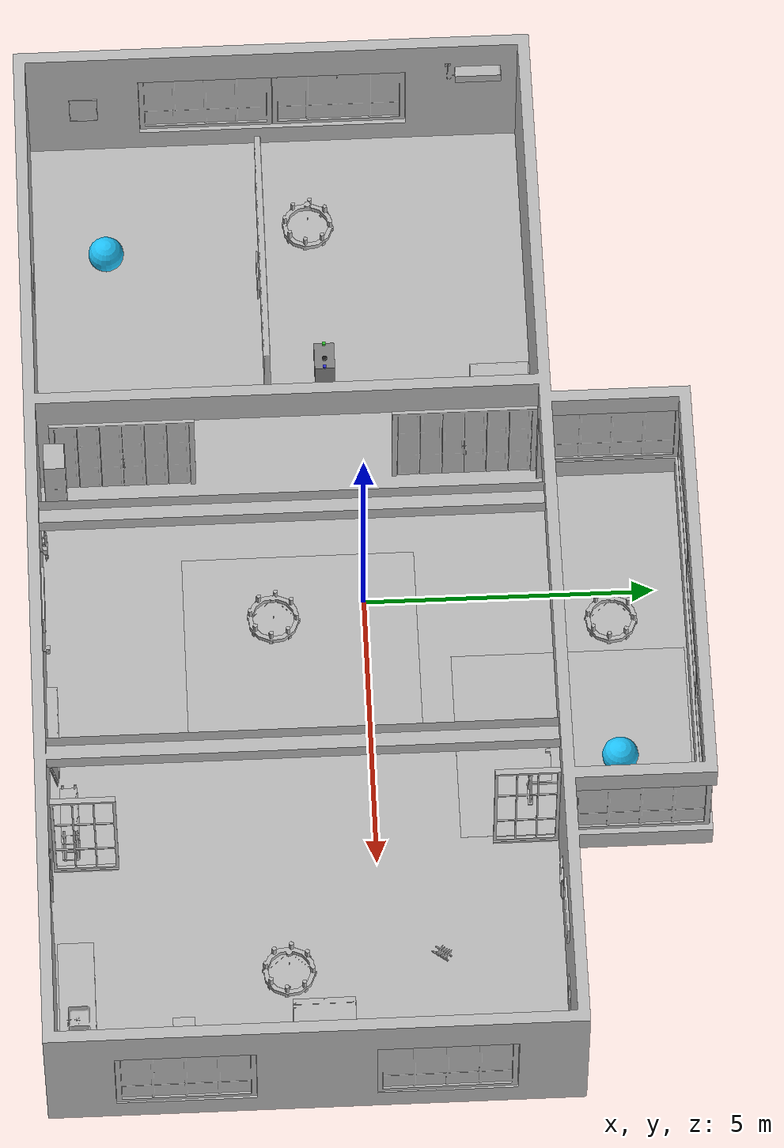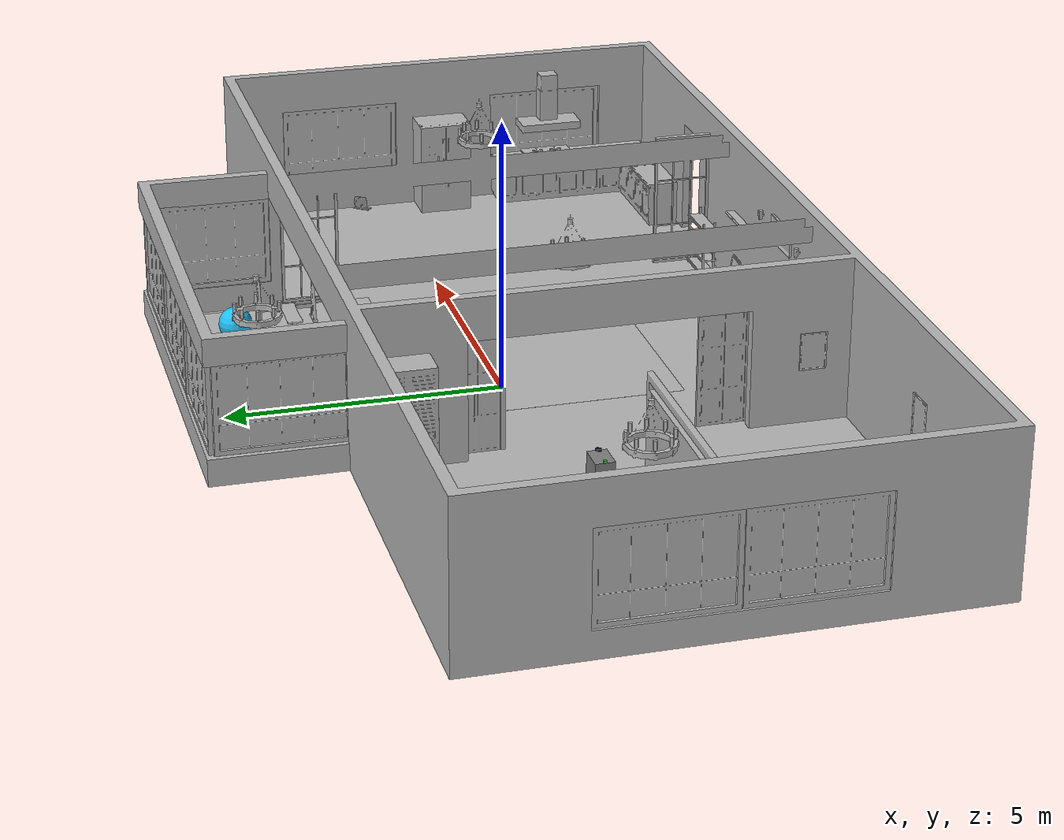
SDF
<sdf version="1.6">
 <world name="small_house">
  <plugin filename="libignition-gazebo-physics-system.so" name="ignition::gazebo::systems::Physics"/>
  <plugin filename="libignition-gazebo-user-commands-system.so" name="ignition::gazebo::systems::UserCommands"/>
  <plugin filename="libignition-gazebo-scene-broadcaster-system.so" name="ignition::gazebo::systems::SceneBroadcaster"/>
  <plugin filename="libignition-gazebo-sensors-system.so" name="ignition::gazebo::systems::Sensors">
   <render_engine>ogre2</render_engine>
  </plugin>
  <plugin filename="libignition-gazebo-imu-system.so" name="ignition::gazebo::systems::Imu"/>
  <gravity>0 0 -9.8</gravity>
  <magnetic_field>6e-06 2.3e-05 -4.2e-05</magnetic_field>
  <atmosphere type="adiabatic"/>
  <physics name="default_physics" default="0" type="ode">
   <max_step_size>0.001</max_step_size>
   <real_time_factor>1</real_time_factor>
   <real_time_update_rate>1000</real_time_update_rate>
  </physics>
  <scene>
   <ambient>0.4 0.4 0.4 1</ambient>
   <background>0.7 0.7 0.7 1</background>
   <shadows>false</shadows>
   <grid>false</grid>
   <origin_visual>false</origin_visual>
  </scene>
  <spherical_coordinates>
   <surface_model>EARTH_WGS84</surface_model>
   <latitude_deg>0</latitude_deg>
   <longitude_deg>0</longitude_deg>
   <elevation>0</elevation>
   <heading_deg>0</heading_deg>
  </spherical_coordinates>
  <model name="AirconditionerA_01_001">
   <static>true</static>
   <include><uri>model://aws_robomaker_residential_AirconditionerA_01</uri></include>
   <pose>-9.199410 2.411230 2.084544 0 -0 0</pose>
  </model>
  <model name="AirconditionerB_01_001">
   <static>true</static>
   <include><uri>model://aws_robomaker_residential_AirconditionerB_01</uri></include>
   <pose>-2.004656 -5.226610 0.003485 0 -0 0</pose>
  </model>
  <model name="Ball_01_001">
   <static>true</static>
   <include><uri>model://aws_robomaker_residential_Ball_01</uri></include>
   <pose>3.295503 4.225674 0.318684 0 -0 0</pose>
  </model>
  <model name="Ball_01_003">
   <static>true</static>
   <include><uri>model://aws_robomaker_residential_Ball_01</uri></include>
   <pose>-6.945503 -4.22174 0.318684 0 -0 0</pose>
  </model>
  <model name="Board_01_001">
   <static>true</static>
   <include><uri>model://aws_robomaker_residential_Board_01</uri></include>
   <pose>2.779073 -5.392703 1.538173 0 -0 0</pose>
  </model>
  <model name="Chandelier_01_001">
   <static>true</static>
   <include><uri>model://aws_robomaker_residential_Chandelier_01</uri></include>
   <pose>1.221061 4.155740 1.295000 0 -0 0</pose>
  </model>
  <model name="Chandelier_01_002">
   <static>true</static>
   <include><uri>model://aws_robomaker_residential_Chandelier_01</uri></include>
   <pose>-6.451061 -0.692040 1.810000 0 -0 0</pose>
  </model>
  <model name="Chandelier_01_003">
   <static>true</static>
   <include><uri>model://aws_robomaker_residential_Chandelier_01</uri></include>
   <pose>7.824061 -1.59 1.7510000 0 -0 0</pose>
  </model>
  <model name="Chandelier_01_004">
   <static>true</static>
   <include><uri>model://aws_robomaker_residential_Chandelier_01</uri></include>
   <pose>1.221061 -1.592040 1.7873000 0 -0 0</pose>
  </model>
  <model name="Carpet_01_001">
   <static>true</static>
   <include><uri>model://aws_robomaker_residential_Carpet_01</uri></include>
   <pose>0.785050 -1.106647 0.001106 0 -0 0</pose>
  </model>
  <model name="Carpet_01_002">
   <static>true</static>
   <include><uri>model://aws_robomaker_residential_Carpet_01</uri></include>
   <pose>2.854050 3.45 0.000585 0 -0 0</pose>
  </model>
  <model name="CookingBench_01_001">
   <include><uri>model://aws_robomaker_residential_CookingBench_01</uri></include>
   <pose>9.038383 -3.351140 0.903610 0 -0 3.137133</pose>
   <static>true</static>
  </model>
  <model name="FitnessEquipment_01_001">
   <static>true</static>
   <include><uri>model://aws_robomaker_residential_FitnessEquipment_01</uri></include>
   <pose>3.484720 3.169104 0.003168 0 -0 0</pose>
  </model>
  <model name="FoldingDoor_01_001">
   <static>true</static>
   <include><uri>model://aws_robomaker_residential_FoldingDoor_01</uri></include>
   <pose>-2.461096 1.844219 0.041881 0 -0 0</pose>
  </model>
  <model name="FoldingDoor_01_002">
   <static>true</static>
   <include><uri>model://aws_robomaker_residential_FoldingDoor_01</uri></include>
   <pose>-2.461096 -4.053320 0.041881 0 -0 0</pose>
  </model>
  <model name="HouseWallB_01_001">
   <static>true</static>
   <include><uri>model://aws_robomaker_residential_HouseWallB_01</uri></include>
  </model>
  <model name="FloorB_01_001">
   <static>true</static>
   <include><uri>model://aws_robomaker_residential_FloorB_01</uri></include>
  </model>
  <model name="FoldingDoor_02_001">
   <static>true</static>
   <include><uri>model://aws_robomaker_residential_FoldingDoor_02</uri></include>
   <pose>4.674231 2.46451 0 0 -0 3.14159</pose>
  </model>
  <model name="FoldingDoor_02_002">
   <static>true</static>
   <include><uri>model://aws_robomaker_residential_FoldingDoor_02</uri></include>
   <pose>4.8912 -4.84968 0 0 -0 0</pose>
  </model>
  <model name="KitchenCabinet_01_001">
   <static>true</static>
   <include><uri>model://aws_robomaker_residential_KitchenCabinet_01</uri></include>
   <pose>8.002009 -3.836509 0.012068 0 -0 -3.140001</pose>
  </model>
  <model name="LightC_01_001">
   <static>true</static>
   <include><uri>model://aws_robomaker_residential_LightC_01</uri></include>
   <pose>1.769567 -5.4443710 2.000000 0 -0 0</pose>
  </model>
  <model name="LightC_01_002">
   <static>true</static>
   <include><uri>model://aws_robomaker_residential_LightC_01</uri></include>
   <pose>-0.138245 -5.4443710 2.000000 0 -0 0</pose>
  </model>
  <model name="PortraitA_01">
   <static>true</static>
   <include><uri>model://aws_robomaker_residential_PortraitA_01</uri></include>
   <pose>-2.712360 -4.817539 1.00000 0 -0 1.566796</pose>
  </model>
  <model name="PortraitB_01">
   <static>true</static>
   <include><uri>model://aws_robomaker_residential_PortraitB_01</uri></include>
   <pose>-1.279683 -5.429630 0.0 -0.076901 0 -3.116718</pose>
  </model>
  <model name="PortraitB_02">
   <static>true</static>
   <include><uri>model://aws_robomaker_residential_PortraitB_02</uri></include>
   <pose>5.737017 3.080310 0.300000 0 -0 0</pose>
  </model>
  <model name="PortraitB_03">
   <static>true</static>
   <include><uri>model://aws_robomaker_residential_PortraitB_03</uri></include>
   <pose>3.071380 -5.349366 0.005494 -0.168428 0.0 3.104232</pose>
  </model>
  <model name="PortraitA_02">
   <static>true</static>
   <include><uri>model://aws_robomaker_residential_PortraitA_02</uri></include>
   <pose>7.937017 3.080310 0.300000 0 -0 3.14</pose>
  </model>
  <model name="PortraitC_01">
   <static>true</static>
   <include><uri>model://aws_robomaker_residential_PortraitC_01</uri></include>
   <pose>-9.294904 -4.526084 1.000000 0 -0 1.554734</pose>
  </model>
  <model name="PortraitD_01">
   <static>true</static>
   <include><uri>model://aws_robomaker_residential_PortraitD_01</uri></include>
   <pose>0.789763 -5.478725 1.800000 0 -0 3.138531</pose>
  </model>
  <model name="PortraitD_02">
   <static>true</static>
   <include><uri>model://aws_robomaker_residential_PortraitD_02</uri></include>
   <pose>6.870181 3.080310 1.488439 0 -0 0</pose>
  </model>
  <model name="PortraitE_01">
   <static>true</static>
   <include><uri>model://aws_robomaker_residential_PortraitE_01</uri></include>
   <pose>-5.773094 -5.492466 1.000000 0 -0 3.132627</pose>
  </model>
  <model name="PortraitE_02">
   <static>true</static>
   <include><uri>model://aws_robomaker_residential_PortraitE_02</uri></include>
   <pose>-6.193025 -1.590208 0.3 0 -0 0.004290</pose>
  </model>
  <model name="Rangehood_01_001">
   <static>true</static>
   <include><uri>model://aws_robomaker_residential_Rangehood_01</uri></include>
   <pose>9.019794 -3.369940 1.507605 0 -0 0</pose>
  </model>
  <model name="Refrigerator_01_001">
   <static>true</static>
   <include><uri>model://aws_robomaker_residential_Refrigerator_01</uri></include>
   <pose>8.702731 -1.032031 0 0 -0 -1.563499</pose>
  </model>
  <model name="ShoeRack_01_001">
   <static>true</static>
   <include><uri>model://aws_robomaker_residential_ShoeRack_01</uri></include>
   <pose>4.297978 -5.173566 0 0 -0 0</pose>
  </model>
  <model name="Tableware_01_001">
   <static>true</static>
   <include><uri>model://aws_robomaker_residential_Tableware_01</uri></include>
   <pose>7.15317 0.982767 0.817812 -0.001238 -0.000976 1.02476</pose>
  </model>
  <model name="RoomWall_01_001">
   <static>true</static>
   <include><uri>model://aws_robomaker_residential_RoomWall_01</uri></include>
   <pose>-6.097550 -1.496180 0.028124 0 -0 0</pose>
  </model>
  <model name="Wardrobe_01_001">
   <static>true</static>
   <include><uri>model://aws_robomaker_residential_Wardrobe_01</uri></include>
   <pose>-3.146710 2.476204 0.000704 0 -0 -1.569673</pose>
  </model>
  <model name="RoomWindow_01_001">
   <static>true</static>
   <include><uri>model://aws_robomaker_residential_RoomWindow_01</uri></include>
   <pose>-9.418600 -0.026285 0.502739 0 -0 0</pose>
  </model>
  <model name="RoomWindow_01_002">
   <static>true</static>
   <include><uri>model://aws_robomaker_residential_RoomWindow_01</uri></include>
   <pose>-9.418600 -2.374090 0.502739 0 -0 0</pose>
  </model>
  <model name="RoomWindow_01_003">
   <static>true</static>
   <include><uri>model://aws_robomaker_residential_RoomWindow_01</uri></include>
   <pose>9.422616 -3.373981 0.502739 0 -0 -3.136099</pose>
  </model>
  <model name="RoomWindow_01_004">
   <static>true</static>
   <include><uri>model://aws_robomaker_residential_RoomWindow_01</uri></include>
   <pose>9.422558 0.968520 0.496581 0 -0 -3.136099</pose>
  </model>
  <model name="RoomWindow_01_005">
   <static>true</static>
   <include><uri>model://aws_robomaker_residential_RoomWindow_01</uri></include>
   <pose>4.722317 4.470281 0.502739 0 -0 -3.136099</pose>
  </model>
  <model name="RoomWindow_01_006">
   <static>true</static>
   <include><uri>model://aws_robomaker_residential_RoomWindow_01</uri></include>
   <pose>3.488520 5.600688 0.502739 0 -0 -1.566274</pose>
  </model>
  <model name="RoomWindow_01_007">
   <static>true</static>
   <include><uri>model://aws_robomaker_residential_RoomWindow_01</uri></include>
   <pose>1.140949 5.600688 0.502739 0 -0 -1.566274</pose>
  </model>
  <model name="RoomWindow_01_008">
   <static>true</static>
   <include><uri>model://aws_robomaker_residential_RoomWindow_01</uri></include>
   <pose>-1.199340 5.600688 0.502739 0 -0 -1.566274</pose>
  </model>
  <model name="RoomWindow_01_009">
   <static>true</static>
   <include><uri>model://aws_robomaker_residential_RoomWindow_01</uri></include>
   <pose>-2.396624 4.387607 0.502739 0 -0 0</pose>
  </model>
  <light name="LivingRoom_CeilingLight_0" type="point">
   <pose>1.194296 4.155759 2.2 0 -0 0</pose>
   <diffuse>0.5 0.5 0.5 1</diffuse>
   <specular>0.1 0.1 0.1 1</specular>
   <attenuation>
    <range>20</range>
    <constant>0.32</constant>
    <linear>0.01</linear>
    <quadratic>0.03</quadratic>
   </attenuation>
   <cast_shadows>0</cast_shadows>
   <direction>0 0 -1</direction>
  </light>
  <light name="LivingRoom_CeilingLight_1" type="point">
   <pose>1.194296 -1.589959 2.2 0 -0 0</pose>
   <diffuse>0.5 0.5 0.5 1</diffuse>
   <specular>0.1 0.1 0.1 1</specular>
   <attenuation>
    <range>20</range>
    <constant>0.05</constant>
    <linear>0.01</linear>
    <quadratic>0.09</quadratic>
   </attenuation>
   <cast_shadows>0</cast_shadows>
   <direction>0 0 -1</direction>
  </light>
  <light name="LivingRoom_WallLight_0" type="point">
   <pose>1.76956 -5.444370 2.2 0 -0 0</pose>
   <diffuse>0.24 0.24 0.24 1</diffuse>
   <specular>0.1 0.1 0.1 1</specular>
   <attenuation>
    <range>20</range>
    <constant>0.12</constant>
    <linear>0.00</linear>
    <quadratic>0.03</quadratic>
   </attenuation>
   <direction>0 0 -1</direction>
  </light>
  <light name="LivingRoom_WallLight_1" type="point">
   <pose>-0.13826 -5.444370 2.2 0 -0 0</pose>
   <diffuse>0.24 0.24 0.24 1</diffuse>
   <specular>0.1 0.1 0.1 1</specular>
   <attenuation>
    <range>20</range>
    <constant>0.12</constant>
    <linear>0.00</linear>
    <quadratic>0.03</quadratic>
   </attenuation>
   <direction>0 0 -1</direction>
  </light>
  <light name="TV_Light_0" type="point">
   <pose>0.8269 -4.939577 1.1 0 -0 0</pose>
   <diffuse>0.31372 0.31372 0.34901 1</diffuse>
   <specular>0.1 0.1 0.1 1</specular>
   <attenuation>
    <range>3</range>
    <constant>0.10</constant>
    <linear>0.04</linear>
    <quadratic>0.50</quadratic>
   </attenuation>
   <direction>0 0 -1</direction>
  </light>
  <light name="BedRoom_Portrait_Light_0" type="spot">
   <pose>-6.190379 -1.829697 1.5587 0.3 -0 0.0</pose>
   <diffuse>0.5 0.5 0.5 1</diffuse>
   <specular>0.1 0.1 0.1 1</specular>
   <attenuation>
    <range>20</range>
    <constant>0.50</constant>
    <linear>0.01</linear>
    <quadratic>0.00</quadratic>
   </attenuation>
   <spot><inner_angle>0.6</inner_angle><outer_angle>1.0</outer_angle><falloff>1.0</falloff></spot>
   <direction>0 0 -1</direction>
  </light>
  <light name="BedRoom_CeilingLight_0" type="point">
   <pose>-6.451061 -0.692040 2.000000 0 -0 0</pose>
   <diffuse>0.5 0.5 0.5 1</diffuse>
   <specular>0.1 0.1 0.1 1</specular>
   <attenuation>
    <range>20</range>
    <constant>0.32</constant>
    <linear>0.01</linear>
    <quadratic>0.03</quadratic>
   </attenuation>
   <cast_shadows>0</cast_shadows>
   <direction>0 0 -1</direction>
  </light>
  <light name="Kitchen_CeilingLight_0" type="point">
   <pose>7.8582 -1.5905 2.280000 0 -0 0</pose>
   <diffuse>0.5 0.5 0.5 1</diffuse>
   <specular>0.1 0.1 0.1 1</specular>
   <attenuation>
    <range>20</range>
    <constant>0.3</constant>
    <linear>0.01</linear>
    <quadratic>0.01</quadratic>
   </attenuation>
   <cast_shadows>0</cast_shadows>
   <direction>0 0 -1</direction>
  </light>
  <include>
   <uri>model://smart_agent</uri>
   <name>smart_agent</name>
   <pose>-4.4965503 -0.4874 0.25 0 0 0</pose>
  </include>
 </world>
</sdf>

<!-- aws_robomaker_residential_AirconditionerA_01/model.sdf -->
<sdf version="1.6">
  <model name="aws_robomaker_residential_AirconditionerA_01">
    <link name="link">
      <inertial>
        <mass>1</mass>
        <inertia>
          <ixx>1.0</ixx>
          <iyy>1.0</iyy>
          <izz>1.0</izz>
          <ixy>0.0</ixy>
          <ixz>0.0</ixz>
          <iyz>0.0</iyz>
        </inertia>
      </inertial>
      <collision name="collision">
        <geometry>
          <mesh>
            <uri>model://aws_robomaker_residential_AirconditionerA_01/meshes/aws_AirconditionerA_01_collision.DAE</uri>
            <scale>1 1 1</scale>
          </mesh>
        </geometry>
      </collision>
      <visual name="visual">
	    <geometry>
          <mesh>
            <uri>model://aws_robomaker_residential_AirconditionerA_01/meshes/aws_AirconditionerA_01_visual.DAE</uri>
          </mesh>
        </geometry>
      <meta> <layer> 1 </layer></meta>
</visual>
    </link>
	<static>1</static>
  </model>
</sdf>

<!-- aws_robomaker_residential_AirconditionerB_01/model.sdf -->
<sdf version="1.6">
  <model name="aws_robomaker_residential_AirconditionerB_01">
    <link name="link">
      <inertial>
        <mass>1</mass>
        <inertia>
          <ixx>1.0</ixx>
          <iyy>1.0</iyy>
          <izz>1.0</izz>
          <ixy>0.0</ixy>
          <ixz>0.0</ixz>
          <iyz>0.0</iyz>
        </inertia>
      </inertial>
      <collision name="collision">
        <geometry>
          <mesh>
	  <uri>model://aws_robomaker_residential_AirconditionerB_01/meshes/aws_AirconditionerB_01_collision.DAE</uri>
            <scale>1 1 1</scale>
          </mesh>
        </geometry>
      </collision>
      <visual name="visual">
	    <geometry>
          <mesh>
            <uri>model://aws_robomaker_residential_AirconditionerB_01/meshes/aws_AirconditionerB_01_visual.DAE</uri>
          </mesh>
        </geometry>
      <meta> <layer> 1 </layer></meta>
</visual>
    </link>
  </model>
</sdf>

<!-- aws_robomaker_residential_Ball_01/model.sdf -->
<sdf version="1.6">
  <model name="aws_robomaker_residential_Ball_01">
    <link name="link">
      <inertial>
        <mass>0.12</mass>

          <inertia>
            <ixx>0.030752</ixx>
            <ixy>0</ixy>
            <ixz>0</ixz>
            <iyy>0.030752</iyy>
            <iyz>0</iyz>
            <izz>0.030752</izz>
          </inertia>
      </inertial>
      <collision name="collision">

        <geometry>

          <sphere>
            <radius>0.31 </radius>
          </sphere>

        </geometry>

        <surface>
          <friction>
            <ode>
              <mu>0.85</mu>
              <mu2>0.85</mu2>
            </ode>
          </friction>

          <contact>
            <ode>
              <kd>8500</kd>
              <max_vel>5.1</max_vel>
            </ode>
          </contact>
        </surface>

      </collision>
      <visual name="visual">
	    <geometry>

          <sphere>
            <radius>0.31 </radius>
          </sphere>
      </geometry>
          <material>
            <diffuse>0.12 0.76 0.97 1</diffuse>
            <ambient>0.03 0.21 0.27 1</ambient>
          </material>

      <meta> <layer> 1 </layer></meta>
</visual>
    </link>
  </model>
</sdf>

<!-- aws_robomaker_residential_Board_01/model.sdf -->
<sdf version="1.6">
  <model name="aws_robomaker_residential_Board_01">
    <link name="link">
      <inertial>
        <mass>1</mass>
        <inertia>
          <ixx>1.0</ixx>
          <iyy>1.0</iyy>
          <izz>1.0</izz>
          <ixy>0.0</ixy>
          <ixz>0.0</ixz>
          <iyz>0.0</iyz>
        </inertia>
      </inertial>
      <collision name="collision">
        <geometry>
          <mesh>
            <uri>model://aws_robomaker_residential_Board_01/meshes/aws_Board_01_collision.DAE</uri>
            <scale>1 1 1</scale>
          </mesh>
        </geometry>
      </collision>
      <visual name="visual">
	    <geometry>
          <mesh>
            <uri>model://aws_robomaker_residential_Board_01/meshes/aws_Board_01_visual.DAE</uri>
          </mesh>
        </geometry>
      <meta> <layer> 2 </layer></meta>
</visual>
    </link>

    <static>1</static>
  </model>
</sdf>

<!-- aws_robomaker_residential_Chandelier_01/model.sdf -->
<sdf version="1.6">
  <model name="aws_robomaker_residential_Chandelier_01">
    <link name="link">
      <inertial>
        <mass>1</mass>
        <inertia>
          <ixx>1.0</ixx>
          <iyy>1.0</iyy>
          <izz>1.0</izz>
          <ixy>0.0</ixy>
          <ixz>0.0</ixz>
          <iyz>0.0</iyz>
        </inertia>
      </inertial>
      <collision name="collision">
        <geometry>
          <mesh>
            <uri>model://aws_robomaker_residential_Chandelier_01/meshes/aws_Chandelier_01_collision.DAE</uri>
            <scale>1 1 1</scale>
          </mesh>
        </geometry>
      </collision>
      <visual name="visual">
	    <geometry>
          <mesh>
            <uri>model://aws_robomaker_residential_Chandelier_01/meshes/aws_Chandelier_01_visual.DAE</uri>
          </mesh>
        </geometry>
      <meta> <layer> 2 </layer></meta>
</visual>
    </link>
	<static>1</static>
  </model>
</sdf>

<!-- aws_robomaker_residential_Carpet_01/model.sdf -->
<sdf version="1.6">
  <model name="aws_robomaker_residential_Carpet_01">
    <link name="link">
      <inertial>
        <mass>8.1</mass>
        <inertia>
          <ixx>1.0</ixx>
          <iyy>1.0</iyy>
          <izz>1.0</izz>
          <ixy>0.0</ixy>
          <ixz>0.0</ixz>
          <iyz>0.0</iyz>
        </inertia>
      </inertial>

      <collision name="collision">

        <geometry>
          <mesh>
            <uri>model://aws_robomaker_residential_Carpet_01/meshes/aws_Carpet_01_collision.DAE</uri>
            <scale>1 1 0.95</scale>
          </mesh>
        </geometry>

        <surface>
          <friction>
            <ode>
              <mu>100</mu>
              <mu2>50</mu2>
            </ode>
          </friction>
          <contact>
            <ode>
            </ode>
          </contact>
        </surface>

        <pose>0 0 -0.01 0 0 0 </pose>
      </collision>

      <visual name="visual">
	    <geometry>
          <mesh>
            <uri>model://aws_robomaker_residential_Carpet_01/meshes/aws_Carpet_01_visual.DAE</uri>
          </mesh>
        </geometry>
      <meta> <layer> 1 </layer></meta>
</visual>
    </link>

    <static>1</static>

  </model>
</sdf>

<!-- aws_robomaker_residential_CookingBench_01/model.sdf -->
<sdf version="1.6">
  <model name="aws_robomaker_residential_CookingBench_01">
    <link name="link">
      <inertial>
        <mass>1</mass>
        <inertia>
          <ixx>1.0</ixx>
          <iyy>1.0</iyy>
          <izz>1.0</izz>
          <ixy>0.0</ixy>
          <ixz>0.0</ixz>
          <iyz>0.0</iyz>
        </inertia>
      </inertial>
      <collision name="collision">
        <geometry>
          <mesh>
            <uri>model://aws_robomaker_residential_CookingBench_01/meshes/aws_CookingBench_01_collision.DAE</uri>
            <scale>1 1 1</scale>
          </mesh>
        </geometry>
      </collision>
      <visual name="visual">
	    <geometry>
          <mesh>
            <uri>model://aws_robomaker_residential_CookingBench_01/meshes/aws_CookingBench_01_visual.DAE</uri>
          </mesh>
        </geometry>
      <meta> <layer> 1 </layer></meta>
</visual>
    </link>
  </model>
</sdf>

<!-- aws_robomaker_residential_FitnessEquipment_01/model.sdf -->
<sdf version="1.6">
  <model name="aws_robomaker_residential_FitnessEquipment_01">
    <link name="link">
      <inertial>
        <mass>80</mass>
        <inertia>
          <ixx>1.0</ixx>
          <iyy>1.0</iyy>
          <izz>1.0</izz>
          <ixy>0.0</ixy>
          <ixz>0.0</ixz>
          <iyz>0.0</iyz>
        </inertia>
      </inertial>
      <collision name="collision">
        <geometry>
          <mesh>
            <uri>model://aws_robomaker_residential_FitnessEquipment_01/meshes/aws_FitnessEquipment_01_collision.DAE</uri>
            <scale>1 1 1</scale>
          </mesh>
        </geometry>
      </collision>
      <visual name="visual">
	    <geometry>
          <mesh>
            <uri>model://aws_robomaker_residential_FitnessEquipment_01/meshes/aws_FitnessEquipment_01_visual.DAE</uri>
          </mesh>
        </geometry>
      <meta> <layer> 1 </layer></meta>
</visual>
    </link>
  <static>1</static>
  </model>
</sdf>

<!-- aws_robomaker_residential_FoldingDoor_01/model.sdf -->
<sdf version="1.6">
  <model name="aws_robomaker_residential_FoldingDoor_01">
    <link name="link">
      <inertial>
        <mass>1</mass>
        <inertia>
          <ixx>1.0</ixx>
          <iyy>1.0</iyy>
          <izz>1.0</izz>
          <ixy>0.0</ixy>
          <ixz>0.0</ixz>
          <iyz>0.0</iyz>
        </inertia>
      </inertial>
      <collision name="collision">
        <geometry>
          <mesh>
            <uri>model://aws_robomaker_residential_FoldingDoor_01/meshes/aws_FoldingDoor_01_collision.DAE</uri>
            <scale>1 1 1</scale>
          </mesh>
        </geometry>
      </collision>
      <visual name="visual">
	    <geometry>
          <mesh>
            <uri>model://aws_robomaker_residential_FoldingDoor_01/meshes/aws_FoldingDoor_01_visual.DAE</uri>
          </mesh>
        </geometry>
      <meta> <layer> 2 </layer></meta>
</visual>
    </link>
	<static>1</static>
  </model>
</sdf>

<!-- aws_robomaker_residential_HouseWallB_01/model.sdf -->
<sdf version="1.6">
  <model name="aws_robomaker_residential_HouseWallB_01">
    <link name="link">
      <inertial>
        <mass>1</mass>
        <inertia>
          <ixx>1.0</ixx>
          <iyy>1.0</iyy>
          <izz>1.0</izz>
          <ixy>0.0</ixy>
          <ixz>0.0</ixz>
          <iyz>0.0</iyz>
        </inertia>
      </inertial>
      <collision name="collision">
        <geometry>
          <mesh>
            <uri>model://aws_robomaker_residential_HouseWallB_01/meshes/aws_HouseWallB_01_collision.DAE</uri>
            <scale>1 1 1</scale>
          </mesh>
        </geometry>
      </collision>
      <visual name="visual">
	    <geometry>
          <mesh>
            <uri>model://aws_robomaker_residential_HouseWallB_01/meshes/aws_HouseWallB_01_visual.DAE</uri>
          </mesh>
        </geometry>
      <meta> <layer> 2 </layer></meta>
</visual>
    </link>
<static>1</static>
  </model>
</sdf>

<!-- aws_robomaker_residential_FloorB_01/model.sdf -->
<sdf version="1.6">
  <model name="aws_robomaker_residential_FloorB_01">
    <link name="link">
      <inertial>
        <mass>100</mass>
        <inertia>
          <ixx>1.0</ixx>
          <iyy>1.0</iyy>
          <izz>1.0</izz>
          <ixy>0.0</ixy>
          <ixz>0.0</ixz>
          <iyz>0.0</iyz>
        </inertia>
      </inertial>

      <collision name="collision">
        <geometry>
          <mesh>
            <uri>model://aws_robomaker_residential_FloorB_01/meshes/aws_FloorB_01_collision.DAE</uri>
            <scale>1 1 0.9</scale>
          </mesh>
        </geometry>

        <surface>
          <friction>
            <ode>
              <mu>100</mu>
              <mu2>50</mu2>
            </ode>
          </friction>
        </surface>
      </collision>

      <visual name="visual">
	    <geometry>
          <mesh>
            <uri>model://aws_robomaker_residential_FloorB_01/meshes/aws_FloorB_01_visual.DAE</uri>
          </mesh>
        </geometry>
      <meta> <layer> 1 </layer></meta>
</visual>
    </link>

	<static>1</static>
  </model>
</sdf>

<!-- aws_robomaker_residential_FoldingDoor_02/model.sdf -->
<sdf version="1.6">
  <model name="aws_robomaker_residential_FoldingDoor_02">
    <link name="link">
      <inertial>
        <mass>1</mass>
        <inertia>
          <ixx>1.0</ixx>
          <iyy>1.0</iyy>
          <izz>1.0</izz>
          <ixy>0.0</ixy>
          <ixz>0.0</ixz>
          <iyz>0.0</iyz>
        </inertia>
      </inertial>
      <collision name="collision">
        <geometry>
          <mesh>
            <uri>model://aws_robomaker_residential_FoldingDoor_02/meshes/aws_FoldingDoor_02_collision.DAE</uri>
            <scale>1 1 1</scale>
          </mesh>
        </geometry>
      </collision>
      <visual name="visual">
	    <geometry>
          <mesh>
            <uri>model://aws_robomaker_residential_FoldingDoor_02/meshes/aws_FoldingDoor_02_visual.DAE</uri>
          </mesh>
        </geometry>
      <meta> <layer> 2 </layer></meta>
</visual>
    </link>
<static>1</static>
  </model>
</sdf>

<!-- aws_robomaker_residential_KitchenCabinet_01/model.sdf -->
<sdf version="1.6">
  <model name="aws_robomaker_residential_KitchenCabinet_01">
    <link name="link">
      <inertial>
        <mass>1</mass>
        <inertia>
          <ixx>1.0</ixx>
          <iyy>1.0</iyy>
          <izz>1.0</izz>
          <ixy>0.0</ixy>
          <ixz>0.0</ixz>
          <iyz>0.0</iyz>
        </inertia>
      </inertial>
      <collision name="collision">
        <laser_retro>0</laser_retro>
        <max_contacts>10</max_contacts>
        <geometry>
          <mesh>
            <uri>model://aws_robomaker_residential_KitchenCabinet_01/meshes/aws_KitchenCabinet_01_collision.DAE</uri>
            <scale>1 1 1</scale>
          </mesh>
        </geometry>
      </collision>
      <visual name="visual">
	    <geometry>
          <mesh>
            <uri>model://aws_robomaker_residential_KitchenCabinet_01/meshes/aws_KitchenCabinet_01_visual.DAE</uri>
          </mesh>
        </geometry>
      <meta> <layer> 1 </layer></meta>
</visual>
    </link>

    <static>1</static>
  </model>
</sdf>

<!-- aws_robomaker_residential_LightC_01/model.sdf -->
<sdf version="1.6">
  <model name="aws_robomaker_residential_LightC_01">
    <link name="link">
      <inertial>
        <mass>1</mass>
        <inertia>
          <ixx>1.0</ixx>
          <iyy>1.0</iyy>
          <izz>1.0</izz>
          <ixy>0.0</ixy>
          <ixz>0.0</ixz>
          <iyz>0.0</iyz>
        </inertia>
      </inertial>
      <collision name="collision">
        <geometry>
          <mesh>
            <uri>model://aws_robomaker_residential_LightC_01/meshes/aws_LightC_01_collision.DAE</uri>
            <scale>1 1 1</scale>
          </mesh>
        </geometry>
      </collision>
      <visual name="visual">
	    <geometry>
          <mesh>
            <uri>model://aws_robomaker_residential_LightC_01/meshes/aws_LightC_01_visual.DAE</uri>
          </mesh>
        </geometry>
      <meta> <layer> 2 </layer></meta>
</visual>
    </link>
	<static>1</static>
  </model>
</sdf>

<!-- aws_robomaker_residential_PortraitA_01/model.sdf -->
<sdf version="1.6">
  <model name="aws_robomaker_residential_PortraitA_01">
    <link name="link">
      <inertial>
        <mass>1</mass>
        <inertia>
          <ixx>1.0</ixx>
          <iyy>1.0</iyy>
          <izz>1.0</izz>
          <ixy>0.0</ixy>
          <ixz>0.0</ixz>
          <iyz>0.0</iyz>
        </inertia>
      </inertial>
      <collision name="collision">
        <geometry>
          <mesh>
            <uri>model://aws_robomaker_residential_PortraitA_01/meshes/aws_PortraitA_01_collision.DAE</uri>
            <scale>1 1 1</scale>
          </mesh>
        </geometry>
      </collision>
      <visual name="visual">
	    <geometry>
          <mesh>
            <uri>model://aws_robomaker_residential_PortraitA_01/meshes/aws_PortraitA_01_visual.DAE</uri>
          </mesh>
        </geometry>
      <meta> <layer> 2 </layer></meta>
</visual>
    </link>
	<static>1</static>
  </model>
</sdf>

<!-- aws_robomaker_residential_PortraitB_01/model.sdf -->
<sdf version="1.6">
  <model name="aws_robomaker_residential_PortraitB_01">
    <link name="link">
      <inertial>
        <mass>1</mass>
        <inertia>
          <ixx>1.0</ixx>
          <iyy>1.0</iyy>
          <izz>1.0</izz>
          <ixy>0.0</ixy>
          <ixz>0.0</ixz>
          <iyz>0.0</iyz>
        </inertia>
      </inertial>
      <collision name="collision">
        <geometry>
          <mesh>
            <uri>model://aws_robomaker_residential_PortraitB_01/meshes/aws_PortraitB_01_collision.DAE</uri>
            <scale>1 1 1</scale>
          </mesh>
        </geometry>
      </collision>
      <visual name="visual">
	    <geometry>
          <mesh>
            <uri>model://aws_robomaker_residential_PortraitB_01/meshes/aws_PortraitB_01_visual.DAE</uri>
          </mesh>
        </geometry>
      <meta> <layer> 2 </layer></meta>
</visual>
    </link>
	<static>1</static>
  </model>
</sdf>

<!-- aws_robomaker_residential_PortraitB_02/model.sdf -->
<sdf version="1.6">
  <model name="aws_robomaker_residential_PortraitB_02">
    <link name="link">
      <inertial>
        <mass>1</mass>
        <inertia>
          <ixx>1.0</ixx>
          <iyy>1.0</iyy>
          <izz>1.0</izz>
          <ixy>0.0</ixy>
          <ixz>0.0</ixz>
          <iyz>0.0</iyz>
        </inertia>
      </inertial>
      <collision name="collision">
        <geometry>
          <mesh>
            <uri>model://aws_robomaker_residential_PortraitB_02/meshes/aws_PortraitB_01_collision.DAE</uri>
            <scale>1 1 1</scale>
          </mesh>
        </geometry>
      </collision>
      <visual name="visual">
	    <geometry>
          <mesh>
            <uri>model://aws_robomaker_residential_PortraitB_02/meshes/aws_PortraitB_01_visual.DAE</uri>
          </mesh>
        </geometry>
      <meta> <layer> 2 </layer></meta>
</visual>
    </link>
	<static>1</static>
  </model>
</sdf>

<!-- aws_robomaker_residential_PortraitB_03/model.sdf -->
<sdf version="1.6">
  <model name="aws_robomaker_residential_PortraitB_03">
    <link name="link">
      <inertial>
        <mass>1</mass>
        <inertia>
          <ixx>1.0</ixx>
          <iyy>1.0</iyy>
          <izz>1.0</izz>
          <ixy>0.0</ixy>
          <ixz>0.0</ixz>
          <iyz>0.0</iyz>
        </inertia>
      </inertial>
      <collision name="collision">
        <geometry>
          <mesh>
            <uri>model://aws_robomaker_residential_PortraitB_03/meshes/aws_PortraitB_01_collision.DAE</uri>
            <scale>1 1 1</scale>
          </mesh>
        </geometry>
      </collision>
      <visual name="visual">
	    <geometry>
          <mesh>
            <uri>model://aws_robomaker_residential_PortraitB_03/meshes/aws_PortraitB_01_visual.DAE</uri>
          </mesh>
        </geometry>
      <meta> <layer> 2 </layer></meta>
</visual>
    </link>
	<static>1</static>
  </model>
</sdf>

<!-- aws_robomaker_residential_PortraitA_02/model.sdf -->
<sdf version="1.6">
  <model name="aws_robomaker_residential_PortraitA_02">
    <link name="link">
      <inertial>
        <mass>1</mass>
        <inertia>
          <ixx>1.0</ixx>
          <iyy>1.0</iyy>
          <izz>1.0</izz>
          <ixy>0.0</ixy>
          <ixz>0.0</ixz>
          <iyz>0.0</iyz>
        </inertia>
      </inertial>
      <collision name="collision">
        <geometry>
          <mesh>
            <uri>model://aws_robomaker_residential_PortraitA_02/meshes/aws_PortraitA_01_collision.DAE</uri>
            <scale>1 1 1</scale>
          </mesh>
        </geometry>
      </collision>
      <visual name="visual">
	    <geometry>
          <mesh>
            <uri>model://aws_robomaker_residential_PortraitA_02/meshes/aws_PortraitA_01_visual.DAE</uri>
          </mesh>
        </geometry>
      <meta> <layer> 2 </layer></meta>
</visual>
    </link>
	<static>1</static>
  </model>
</sdf>

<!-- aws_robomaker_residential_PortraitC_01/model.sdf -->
<sdf version="1.6">
  <model name="aws_robomaker_residential_PortraitC_01">
    <link name="link">
      <inertial>
        <mass>1</mass>
        <inertia>
          <ixx>1.0</ixx>
          <iyy>1.0</iyy>
          <izz>1.0</izz>
          <ixy>0.0</ixy>
          <ixz>0.0</ixz>
          <iyz>0.0</iyz>
        </inertia>
      </inertial>
      <collision name="collision">
        <geometry>
          <mesh>
            <uri>model://aws_robomaker_residential_PortraitC_01/meshes/aws_PortraitC_01_collision.DAE</uri>
            <scale>1 1 1</scale>
          </mesh>
        </geometry>
      </collision>
      <visual name="visual">
	    <geometry>
          <mesh>
            <uri>model://aws_robomaker_residential_PortraitC_01/meshes/aws_PortraitC_01_visual.DAE</uri>
          </mesh>
        </geometry>
      <meta> <layer> 2 </layer></meta>
</visual>
    </link>
	<static>1</static>
  </model>
</sdf>

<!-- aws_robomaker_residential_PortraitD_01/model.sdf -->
<sdf version="1.6">
  <model name="aws_robomaker_residential_PortraitD_01">
    <link name="link">

      <inertial>
        <mass>1.5</mass>
        <inertia>
          <ixx>1.0</ixx>
          <iyy>1.0</iyy>
          <izz>1.0</izz>
          <ixy>0.0</ixy>
          <ixz>0.0</ixz>
          <iyz>0.0</iyz>
        </inertia>
      </inertial>

      <collision name="collision">
        <geometry>
          <mesh>
            <uri>model://aws_robomaker_residential_PortraitD_01/meshes/aws_PortraitD_01_collision.DAE</uri>
            <scale>1 1 1</scale>
          </mesh>
        </geometry>

      </collision>

      <visual name="visual">
	    <geometry>
          <mesh>
            <uri>model://aws_robomaker_residential_PortraitD_01/meshes/aws_PortraitD_01_visual.DAE</uri>
          </mesh>
        </geometry>
      <meta> <layer> 2 </layer></meta>
</visual>
    </link>
	<static>1</static>
  </model>
</sdf>

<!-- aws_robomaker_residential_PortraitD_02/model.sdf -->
<sdf version="1.6">
  <model name="aws_robomaker_residential_PortraitD_02">
    <link name="link">

      <inertial>
        <mass>1.5</mass>
        <inertia>
          <ixx>1.0</ixx>
          <iyy>1.0</iyy>
          <izz>1.0</izz>
          <ixy>0.0</ixy>
          <ixz>0.0</ixz>
          <iyz>0.0</iyz>
        </inertia>
      </inertial>

      <collision name="collision">
        <geometry>
          <mesh>
            <uri>model://aws_robomaker_residential_PortraitD_02/meshes/aws_PortraitD_01_collision.DAE</uri>
            <scale>1 1 1</scale>
          </mesh>
        </geometry>

      </collision>

      <visual name="visual">
	    <geometry>
          <mesh>
            <uri>model://aws_robomaker_residential_PortraitD_02/meshes/aws_PortraitD_01_visual.DAE</uri>
          </mesh>
        </geometry>
      <meta> <layer> 2 </layer></meta>
</visual>
    </link>
	<static>1</static>
  </model>
</sdf>

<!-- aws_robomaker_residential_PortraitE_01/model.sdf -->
<sdf version="1.6">
  <model name="aws_robomaker_residential_PortraitE_01">
    <link name="link">
      <inertial>
        <mass>1</mass>
        <inertia>
          <ixx>1.0</ixx>
          <iyy>1.0</iyy>
          <izz>1.0</izz>
          <ixy>0.0</ixy>
          <ixz>0.0</ixz>
          <iyz>0.0</iyz>
        </inertia>
      </inertial>
      <collision name="collision">
        <geometry>
          <mesh>
            <uri>model://aws_robomaker_residential_PortraitE_01/meshes/aws_PortraitE_01_collision.DAE</uri>
            <scale>1 1 1</scale>
          </mesh>
        </geometry>
      </collision>
      <visual name="visual">
	    <geometry>
          <mesh>
            <uri>model://aws_robomaker_residential_PortraitE_01/meshes/aws_PortraitE_01_visual.DAE</uri>
          </mesh>
        </geometry>
      <meta> <layer> 2 </layer></meta>
</visual>
    </link>
	<static>1</static>
  </model>
</sdf>

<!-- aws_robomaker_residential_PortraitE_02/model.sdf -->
<sdf version="1.6">
  <model name="aws_robomaker_residential_PortraitE_02">
    <link name="link">
      <inertial>
        <mass>1</mass>
        <inertia>
          <ixx>1.0</ixx>
          <iyy>1.0</iyy>
          <izz>1.0</izz>
          <ixy>0.0</ixy>
          <ixz>0.0</ixz>
          <iyz>0.0</iyz>
        </inertia>
      </inertial>
      <collision name="collision">
        <geometry>
          <mesh>
            <uri>model://aws_robomaker_residential_PortraitE_02/meshes/aws_PortraitE_01_collision.DAE</uri>
            <scale>1 1 1</scale>
          </mesh>
        </geometry>
      </collision>
      <visual name="visual">
	    <geometry>
          <mesh>
            <uri>model://aws_robomaker_residential_PortraitE_02/meshes/aws_PortraitE_01_visual.DAE</uri>
          </mesh>
        </geometry>
      <meta> <layer> 2 </layer></meta>
</visual>
    </link>
	<static>1</static>
  </model>
</sdf>

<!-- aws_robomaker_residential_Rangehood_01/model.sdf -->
<sdf version="1.6">
  <model name="aws_robomaker_residential_Rangehood_01">
    <link name="link">
      <inertial>
        <mass>1</mass>
        <inertia>
          <ixx>1.0</ixx>
          <iyy>1.0</iyy>
          <izz>1.0</izz>
          <ixy>0.0</ixy>
          <ixz>0.0</ixz>
          <iyz>0.0</iyz>
        </inertia>
      </inertial>
      <collision name="collision">
        <geometry>
          <mesh>
            <uri>model://aws_robomaker_residential_Rangehood_01/meshes/aws_Rangehood_01_collision.DAE</uri>
            <scale>1 1 1</scale>
          </mesh>
        </geometry>
      </collision>
      <visual name="visual">
	    <geometry>
          <mesh>
            <uri>model://aws_robomaker_residential_Rangehood_01/meshes/aws_Rangehood_01_visual.DAE</uri>
          </mesh>
        </geometry>
      <meta> <layer> 2 </layer></meta>
</visual>
    </link>
	<static>1</static>
  </model>
</sdf>

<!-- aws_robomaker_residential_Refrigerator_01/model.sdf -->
<sdf version="1.6">
  <model name="aws_robomaker_residential_Refrigerator_01">
    <link name="link">
      <inertial>
        <mass>1</mass>
        <inertia>
          <ixx>1.0</ixx>
          <iyy>1.0</iyy>
          <izz>1.0</izz>
          <ixy>0.0</ixy>
          <ixz>0.0</ixz>
          <iyz>0.0</iyz>
        </inertia>
      </inertial>
      <collision name="collision">
        <geometry>
          <mesh>
            <uri>model://aws_robomaker_residential_Refrigerator_01/meshes/aws_Refrigerator_01_collision.DAE</uri>
            <scale>1 1 1</scale>
          </mesh>
        </geometry>
      </collision>
      <visual name="visual">
	    <geometry>
          <mesh>
            <uri>model://aws_robomaker_residential_Refrigerator_01/meshes/aws_Refrigerator_01_visual.DAE</uri>
          </mesh>
        </geometry>
      <meta> <layer> 1 </layer></meta>
</visual>
    </link>
    <static>1</static>
  </model>
</sdf>

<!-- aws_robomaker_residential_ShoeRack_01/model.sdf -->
<sdf version="1.6">
  <model name="aws_robomaker_residential_ShoeRack_01">
    <link name="link">

      <inertial>
        <mass>6</mass>
        <inertia>
          <ixx>1.0</ixx>
          <iyy>1.0</iyy>
          <izz>1.0</izz>
          <ixy>0.0</ixy>
          <ixz>0.0</ixz>
          <iyz>0.0</iyz>
        </inertia>
      </inertial>

      <collision name="collision">

        <geometry>
          <mesh>
            <uri>model://aws_robomaker_residential_ShoeRack_01/meshes/aws_ShoeRack_01_collision.DAE</uri>
            <scale>1 1 1</scale>
          </mesh>
        </geometry>

        <surface>
          <friction>
            <ode>
              <mu>0.2</mu>
              <mu2>0.2</mu2>
            </ode>
          </friction>

          <contact>
            <ode>
              <kd>2500</kd>
            </ode>
          </contact>

        </surface>

      </collision>

      <visual name="visual">
	    <geometry>
          <mesh>
            <uri>model://aws_robomaker_residential_ShoeRack_01/meshes/aws_ShoeRack_01_visual.DAE</uri>
          </mesh>
        </geometry>
      <meta> <layer> 1 </layer></meta>
</visual>

    </link>
  </model>
</sdf>

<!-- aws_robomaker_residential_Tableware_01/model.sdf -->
<sdf version="1.6">
  <model name="aws_robomaker_residential_Tableware_01">
    <link name="link">
      <inertial>
        <mass>1</mass>
        <inertia>
          <ixx>1.0</ixx>
          <iyy>1.0</iyy>
          <izz>1.0</izz>
          <ixy>0.0</ixy>
          <ixz>0.0</ixz>
          <iyz>0.0</iyz>
        </inertia>
      </inertial>
      <collision name="collision">
        <geometry>
          <mesh>
            <uri>model://aws_robomaker_residential_Tableware_01/meshes/aws_Tableware_01_collision.DAE</uri>
            <scale>1 1 1</scale>
          </mesh>
        </geometry>
      </collision>
      <visual name="visual">
	    <geometry>
          <mesh>
            <uri>model://aws_robomaker_residential_Tableware_01/meshes/aws_Tableware_01_visual.DAE</uri>
          </mesh>
        </geometry>
      <meta> <layer> 1 </layer></meta>
</visual>
    </link>
  </model>
</sdf>

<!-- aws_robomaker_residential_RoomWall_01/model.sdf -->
<sdf version="1.6">
  <model name="aws_robomaker_residential_RoomWall_01">
    <link name="link">
      <inertial>
        <mass>100</mass>
        <inertia>
          <ixx>1.0</ixx>
          <iyy>1.0</iyy>
          <izz>1.0</izz>
          <ixy>0.0</ixy>
          <ixz>0.0</ixz>
          <iyz>0.0</iyz>
        </inertia>
      </inertial>
      <collision name="collision">
        <geometry>
          <mesh>
            <uri>model://aws_robomaker_residential_RoomWall_01/meshes/aws_RoomWall_01_collision.DAE</uri>
            <scale>1 1 1</scale>
          </mesh>
        </geometry>
      </collision>
      <visual name="visual">
	    <geometry>
          <mesh>
            <uri>model://aws_robomaker_residential_RoomWall_01/meshes/aws_RoomWall_01_visual.DAE</uri>
          </mesh>
        </geometry>
      <meta> <layer> 2 </layer></meta>
</visual>
    </link>
  <static>1</static>
  </model>
</sdf>

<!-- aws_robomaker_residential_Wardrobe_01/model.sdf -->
<sdf version="1.6">
  <model name="aws_robomaker_residential_Wardrobe_01">
    <link name="link">
      <inertial>
        <mass>51.7</mass>
        <inertia>
          <ixx>1.0</ixx>
          <iyy>1.0</iyy>
          <izz>1.0</izz>
          <ixy>0.0</ixy>
          <ixz>0.0</ixz>
          <iyz>0.0</iyz>
        </inertia>
      </inertial>
      <collision name="collision">
        <geometry>
          <mesh>
            <uri>model://aws_robomaker_residential_Wardrobe_01/meshes/aws_Wardrobe_01_collision.DAE</uri>
            <scale>1 1 1</scale>
          </mesh>
        </geometry>
      </collision>
      <visual name="visual">
	    <geometry>
          <mesh>
            <uri>model://aws_robomaker_residential_Wardrobe_01/meshes/aws_Wardrobe_01_visual.DAE</uri>
          </mesh>
        </geometry>
      <meta> <layer> 1 </layer></meta>
</visual>
    </link>
    <static>1</static>
  </model>
</sdf>

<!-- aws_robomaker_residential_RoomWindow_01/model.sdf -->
<sdf version="1.6">
  <model name="aws_robomaker_residential_RoomWindow_01">
    <link name="link">
      <inertial>
        <mass>1</mass>
        <inertia>
          <ixx>1.0</ixx>
          <iyy>1.0</iyy>
          <izz>1.0</izz>
          <ixy>0.0</ixy>
          <ixz>0.0</ixz>
          <iyz>0.0</iyz>
        </inertia>
      </inertial>
      <collision name="collision">
        <geometry>
          <mesh>
            <uri>model://aws_robomaker_residential_RoomWindow_01/meshes/aws_RoomWindow_01_collision.DAE</uri>
            <scale>1 1 1</scale>
          </mesh>
        </geometry>
      </collision>
      <visual name="visual">
	    <geometry>
          <mesh>
            <uri>model://aws_robomaker_residential_RoomWindow_01/meshes/aws_RoomWindow_01_visual.DAE</uri>
          </mesh>
        </geometry>
      <meta> <layer> 2 </layer></meta>
</visual>
    </link>
	<static>1</static>
  </model>
</sdf>

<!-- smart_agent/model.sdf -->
<sdf version="1.9">
  <model name="smart_agent">
    <pose>0 0 0.25 0 0 0</pose>
    <static>false</static>
    <plugin
      filename="libignition-gazebo-velocity-control-system.so"
      name="ignition::gazebo::systems::VelocityControl">
      <topic>/model/smart_agent/cmd_vel</topic>
    </plugin>

    <link name="base_link">
      <inertial>
        <mass>8.0</mass>
        <inertia>
          <ixx>0.28</ixx>
          <iyy>0.28</iyy>
          <izz>0.45</izz>
          <ixy>0.0</ixy>
          <ixz>0.0</ixz>
          <iyz>0.0</iyz>
        </inertia>
      </inertial>
      <collision name="collision">
        <pose>0 0 0.24 0 0 0</pose>
        <geometry>
          <box>
            <size>0.5 0.35 0.48</size>
          </box>
        </geometry>
      </collision>
      <visual name="visual">
        <pose>0 0 0.24 0 0 0</pose>
        <geometry>
          <box>
            <size>0.5 0.35 0.48</size>
          </box>
        </geometry>
        <material>
          <ambient>0.5 0.5 0.5 1</ambient>
          <diffuse>0.5 0.5 0.5 1</diffuse>
        </material>
      </visual>
      <sensor name="imu_sensor" type="imu">
        <topic>/agent/imu</topic>
        <update_rate>100</update_rate>
        <always_on>true</always_on>
        <visualize>false</visualize>
        <gz_frame_id>base_link</gz_frame_id>
      </sensor>
    </link>

    <link name="lidar_link">
      <pose>0.10 0 0.56 0 0 0</pose>
      <sensor name="lidar_sensor" type="gpu_lidar">
        <topic>/agent/lidar/scan</topic>
        <update_rate>10</update_rate>
        <always_on>true</always_on>
        <visualize>true</visualize>
        <gz_frame_id>lidar_link</gz_frame_id>
        <ray>
          <scan>
            <horizontal>
              <samples>1824</samples>
              <resolution>1</resolution>
              <min_angle>-3.14159</min_angle>
              <max_angle>3.14159</max_angle>
            </horizontal>
            <vertical>
              <samples>16</samples>
              <resolution>1</resolution>
              <min_angle>-0.261799</min_angle>
              <max_angle>0.261799</max_angle>
            </vertical>
          </scan>
          <range>
            <min>0.12</min>
            <max>15.0</max>
            <resolution>0.01</resolution>
          </range>
          <noise>
            <type>gaussian</type>
            <mean>0.0</mean>
            <stddev>0.005</stddev>
          </noise>
        </ray>
      </sensor>
      <visual name="visual">
        <geometry>
          <cylinder>
            <radius>0.04</radius>
            <length>0.04</length>
          </cylinder>
        </geometry>
        <material>
          <ambient>0.1 0.1 0.1 1</ambient>
          <diffuse>0.1 0.1 0.1 1</diffuse>
        </material>
      </visual>
    </link>
    <joint name="lidar_joint" type="fixed">
      <parent>base_link</parent>
      <child>lidar_link</child>
    </joint>

    <link name="front_camera_link">
      <pose>0.23 0 0.50 0 0 0</pose>
      <sensor name="front_camera_sensor" type="camera">
        <topic>/agent/front_camera/image</topic>
        <update_rate>20</update_rate>
        <always_on>true</always_on>
        <gz_frame_id>front_camera_link</gz_frame_id>
        <camera>
          <horizontal_fov>1.396</horizontal_fov>
          <image>
            <width>640</width>
            <height>480</height>
            <format>R8G8B8</format>
          </image>
          <clip>
            <near>0.05</near>
            <far>50.0</far>
          </clip>
        </camera>
      </sensor>
      <visual name="visual">
        <geometry><box><size>0.05 0.05 0.05</size></box></geometry>
        <material><ambient>0.2 0.2 0.9 1</ambient><diffuse>0.2 0.2 0.9 1</diffuse></material>
      </visual>
    </link>
    <joint name="front_camera_joint" type="fixed">
      <parent>base_link</parent>
      <child>front_camera_link</child>
    </joint>

    <link name="rear_camera_link">
      <pose>-0.23 0 0.50 0 0 3.14159</pose>
      <sensor name="rear_camera_sensor" type="camera">
        <topic>/agent/rear_camera/image</topic>
        <update_rate>20</update_rate>
        <always_on>true</always_on>
        <gz_frame_id>rear_camera_link</gz_frame_id>
        <camera>
          <horizontal_fov>1.396</horizontal_fov>
          <image>
            <width>640</width>
            <height>480</height>
            <format>R8G8B8</format>
          </image>
          <clip>
            <near>0.05</near>
            <far>50.0</far>
          </clip>
        </camera>
      </sensor>
      <visual name="visual">
        <geometry><box><size>0.05 0.05 0.05</size></box></geometry>
        <material><ambient>0.2 0.8 0.2 1</ambient><diffuse>0.2 0.8 0.2 1</diffuse></material>
      </visual>
    </link>
    <joint name="rear_camera_joint" type="fixed">
      <parent>base_link</parent>
      <child>rear_camera_link</child>
    </joint>

    <link name="depth_camera_link">
      <pose>0.23 0 0.50 0 0 0</pose>
      <sensor name="depth_camera_sensor" type="depth_camera">
        <topic>/agent/depth_camera/image</topic>
        <update_rate>15</update_rate>
        <always_on>true</always_on>
        <gz_frame_id>depth_camera_link</gz_frame_id>
        <camera>
          <horizontal_fov>1.396</horizontal_fov>
          <image>
            <width>640</width>
            <height>480</height>
            <format>R8G8B8</format>
          </image>
          <clip>
            <near>0.1</near>
            <far>20.0</far>
          </clip>
        </camera>
      </sensor>
      <visual name="visual">
        <geometry><box><size>0.05 0.05 0.05</size></box></geometry>
        <material><ambient>0.9 0.4 0.1 1</ambient><diffuse>0.9 0.4 0.1 1</diffuse></material>
      </visual>
    </link>
    <joint name="depth_camera_joint" type="fixed">
      <parent>base_link</parent>
      <child>depth_camera_link</child>
    </joint>
  </model>
</sdf>
